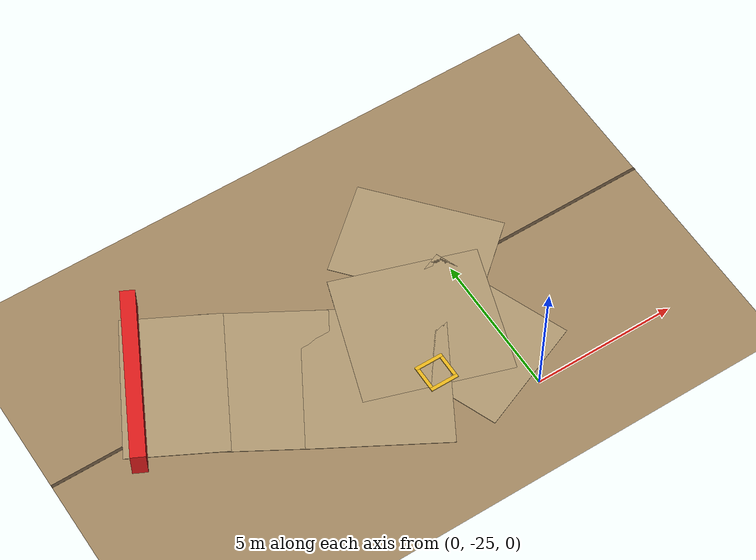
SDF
<sdf version="1.6">
 <world name="navitas_arena">
  <model name="ground_plane">
   <static>true</static>
   <link name="link">
    <collision name="collision">
     <geometry><plane><normal>0 0 1</normal><size>400 400</size></plane></geometry>
     <surface><friction><ode><mu>0.800</mu><mu2>0.800</mu2></ode></friction></surface>
    </collision>
    <visual name="visual">
     <cast_shadows>false</cast_shadows>
     <geometry><plane><normal>0 0 1</normal><size>400 400</size></plane></geometry>
     <material>
      <ambient>0.62 0.52 0.37 1</ambient>
      <diffuse>0.62 0.52 0.37 1</diffuse>
      <specular>0.04 0.04 0.04 1</specular>
     </material>
    </visual>
   </link>
  </model>
  <model name="grid_orta_h1">
   <static>true</static>
   <pose>0.000 -20.000 0.015 0 0 0.000</pose>
   <link name="link">
    <collision name="col"><geometry><box><size>50.000 0.100 0.006</size></box></geometry></collision>
    <visual name="vis">
     <geometry><box><size>50.000 0.100 0.006</size></box></geometry>
     <material>
      <ambient>0.30 0.24 0.17 1</ambient>
      <diffuse>0.30 0.24 0.17 1</diffuse>
      <specular>0.04 0.04 0.04 1</specular>
     </material>
    </visual>
   </link>
  </model>
  <model name="road_orta_1_0">
   <static>true</static>
   <pose>-4.169 -22.070 0.040 0 0 2.623</pose>
   <link name="link">
    <collision name="col"><geometry><box><size>4.656 5.000 0.020</size></box></geometry></collision>
    <visual name="vis">
     <geometry><box><size>4.656 5.000 0.020</size></box></geometry>
     <material>
      <ambient>0.67 0.58 0.43 1</ambient>
      <diffuse>0.67 0.58 0.43 1</diffuse>
      <specular>0.04 0.04 0.04 1</specular>
     </material>
    </visual>
   </link>
  </model>
  <model name="road_orta_1_1">
   <static>true</static>
   <pose>-7.198 -20.320 0.040 0 0 2.611</pose>
   <link name="link">
    <collision name="col"><geometry><box><size>4.141 5.000 0.020</size></box></geometry></collision>
    <visual name="vis">
     <geometry><box><size>4.141 5.000 0.020</size></box></geometry>
     <material>
      <ambient>0.67 0.58 0.43 1</ambient>
      <diffuse>0.67 0.58 0.43 1</diffuse>
      <specular>0.04 0.04 0.04 1</specular>
     </material>
    </visual>
   </link>
  </model>
  <model name="road_orta_1_2">
   <static>true</static>
   <pose>-9.670 -18.930 0.040 0 0 2.654</pose>
   <link name="link">
    <collision name="col"><geometry><box><size>3.332 5.000 0.020</size></box></geometry></collision>
    <visual name="vis">
     <geometry><box><size>3.332 5.000 0.020</size></box></geometry>
     <material>
      <ambient>0.67 0.58 0.43 1</ambient>
      <diffuse>0.67 0.58 0.43 1</diffuse>
      <specular>0.04 0.04 0.04 1</specular>
     </material>
    </visual>
   </link>
  </model>
  <model name="road_orta_2_0">
   <static>true</static>
   <pose>-1.967 -21.250 0.040 0 0 1.255</pose>
   <link name="link">
    <collision name="col"><geometry><box><size>4.582 5.000 0.020</size></box></geometry></collision>
    <visual name="vis">
     <geometry><box><size>4.582 5.000 0.020</size></box></geometry>
     <material>
      <ambient>0.67 0.58 0.43 1</ambient>
      <diffuse>0.67 0.58 0.43 1</diffuse>
      <specular>0.04 0.04 0.04 1</specular>
     </material>
    </visual>
   </link>
  </model>
  <model name="road_orta_2_1">
   <static>true</static>
   <pose>-0.460 -18.696 0.040 0 0 0.710</pose>
   <link name="link">
    <collision name="col"><geometry><box><size>3.367 5.000 0.020</size></box></geometry></collision>
    <visual name="vis">
     <geometry><box><size>3.367 5.000 0.020</size></box></geometry>
     <material>
      <ambient>0.67 0.58 0.43 1</ambient>
      <diffuse>0.67 0.58 0.43 1</diffuse>
      <specular>0.04 0.04 0.04 1</specular>
     </material>
    </visual>
   </link>
  </model>
  <model name="road_orta_3_0">
   <static>true</static>
   <pose>-1.054 -22.399 0.040 0 0 0.385</pose>
   <link name="link">
    <collision name="col"><geometry><box><size>4.101 5.000 0.020</size></box></geometry></collision>
    <visual name="vis">
     <geometry><box><size>4.101 5.000 0.020</size></box></geometry>
     <material>
      <ambient>0.67 0.58 0.43 1</ambient>
      <diffuse>0.67 0.58 0.43 1</diffuse>
      <specular>0.04 0.04 0.04 1</specular>
     </material>
    </visual>
   </link>
  </model>
  <model name="bar_orta_1">
   <static>true</static>
   <pose>-10.744 -18.360 0.500 0 0 4.248</pose>
   <link name="link">
    <collision name="col"><geometry><box><size>6.000 0.500 1.000</size></box></geometry></collision>
    <visual name="vis">
     <geometry><box><size>6.000 0.500 1.000</size></box></geometry>
     <material>
      <ambient>0.85 0.10 0.10 1</ambient>
      <diffuse>0.85 0.10 0.10 1</diffuse>
      <specular>0.04 0.04 0.04 1</specular>
     </material>
    </visual>
   </link>
  </model>
  <model name="kb_orta_N">
   <static>true</static>
   <pose>-2.538 -22.560 0.070 0 0 0.000</pose>
   <link name="link">
    <collision name="col"><geometry><box><size>1.000 0.120 0.040</size></box></geometry></collision>
    <visual name="vis">
     <geometry><box><size>1.000 0.120 0.040</size></box></geometry>
     <material>
      <ambient>0.90 0.70 0.10 1</ambient>
      <diffuse>0.90 0.70 0.10 1</diffuse>
      <specular>0.04 0.04 0.04 1</specular>
     </material>
    </visual>
   </link>
  </model>
  <model name="kb_orta_S">
   <static>true</static>
   <pose>-2.538 -23.440 0.070 0 0 0.000</pose>
   <link name="link">
    <collision name="col"><geometry><box><size>1.000 0.120 0.040</size></box></geometry></collision>
    <visual name="vis">
     <geometry><box><size>1.000 0.120 0.040</size></box></geometry>
     <material>
      <ambient>0.90 0.70 0.10 1</ambient>
      <diffuse>0.90 0.70 0.10 1</diffuse>
      <specular>0.04 0.04 0.04 1</specular>
     </material>
    </visual>
   </link>
  </model>
  <model name="kb_orta_W">
   <static>true</static>
   <pose>-2.978 -23.000 0.070 0 0 0.000</pose>
   <link name="link">
    <collision name="col"><geometry><box><size>0.120 0.760 0.040</size></box></geometry></collision>
    <visual name="vis">
     <geometry><box><size>0.120 0.760 0.040</size></box></geometry>
     <material>
      <ambient>0.90 0.70 0.10 1</ambient>
      <diffuse>0.90 0.70 0.10 1</diffuse>
      <specular>0.04 0.04 0.04 1</specular>
     </material>
    </visual>
   </link>
  </model>
  <model name="kb_orta_E">
   <static>true</static>
   <pose>-2.098 -23.000 0.070 0 0 0.000</pose>
   <link name="link">
    <collision name="col"><geometry><box><size>0.120 0.760 0.040</size></box></geometry></collision>
    <visual name="vis">
     <geometry><box><size>0.120 0.760 0.040</size></box></geometry>
     <material>
      <ambient>0.90 0.70 0.10 1</ambient>
      <diffuse>0.90 0.70 0.10 1</diffuse>
      <specular>0.04 0.04 0.04 1</specular>
     </material>
    </visual>
   </link>
  </model>
 </world>
</sdf>
